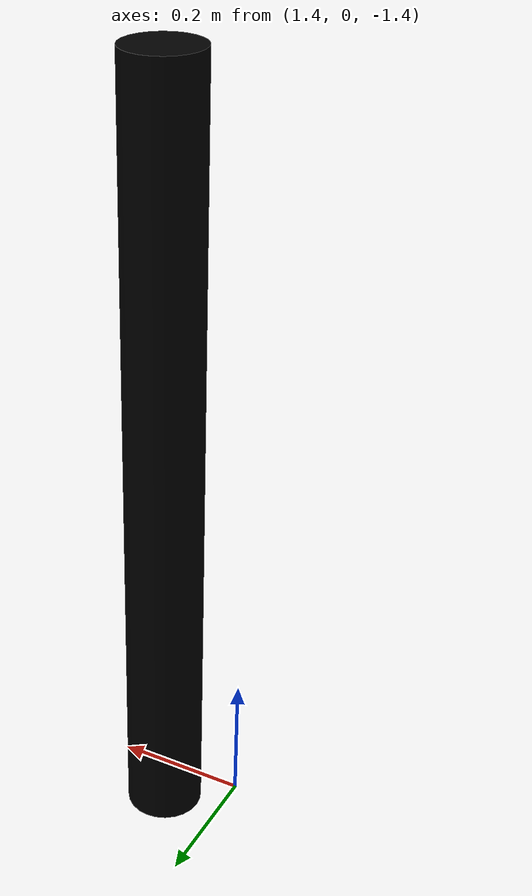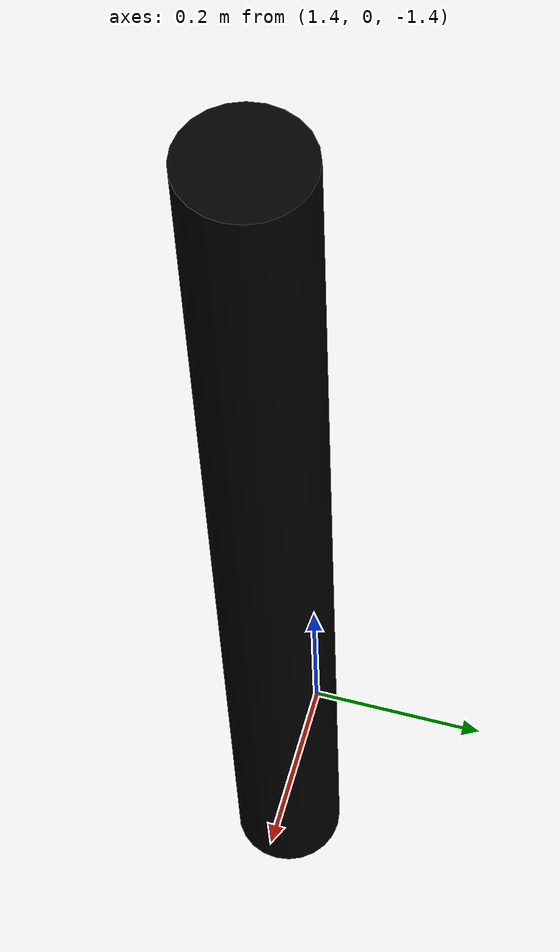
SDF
<?xml version="1.0" encoding="UTF-8"?>

<sdf version="1.10">
    <model name="GateRightLabel">
        <cast_shadows>false</cast_shadows>
        <link name="link">
            <visual name="right_side_label">
                <pose>1.53 0 -0.85 0 0 0</pose>
                <geometry>
                    <cylinder>
                        <length>1.24</length>
                        <radius>0.06</radius>
                    </cylinder>
                </geometry>
                <cast_shadows>false</cast_shadows>

                <material>
                    <ambient>0, 0, 0, 0</ambient>
                    <diffuse>0, 0, 0, 0</diffuse>
                    <specular>0, 0, 0, 0</specular>
                </material>
                <plugin filename="gz-sim-label-system" name="gz::sim::systems::Label">
                    <label>3</label>
                </plugin>
            </visual>
        </link>
        <static>true</static>
    </model>
</sdf>
